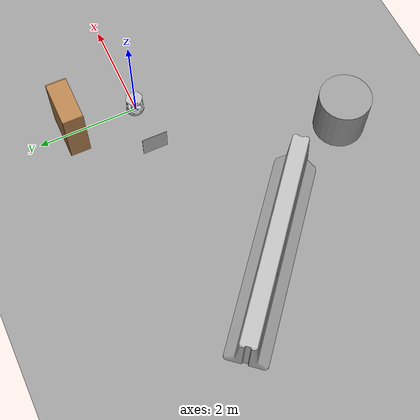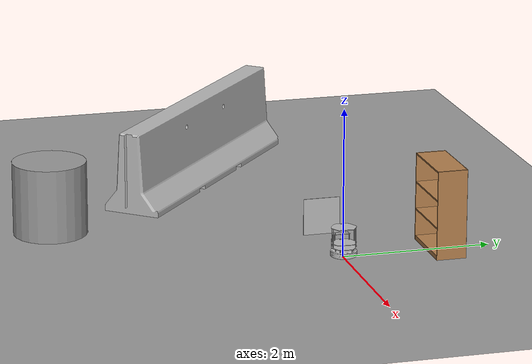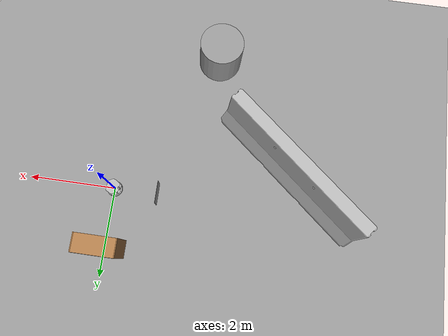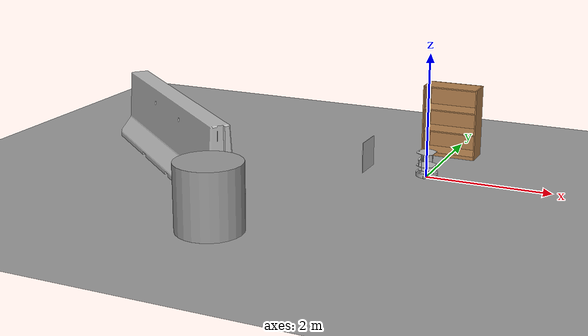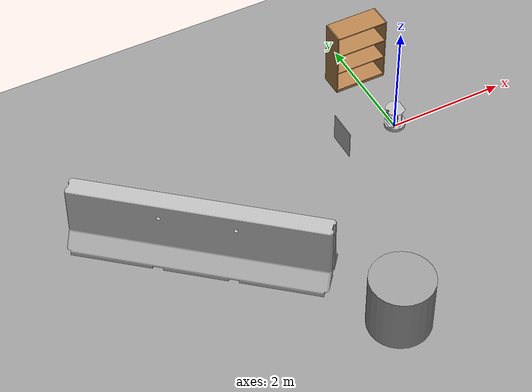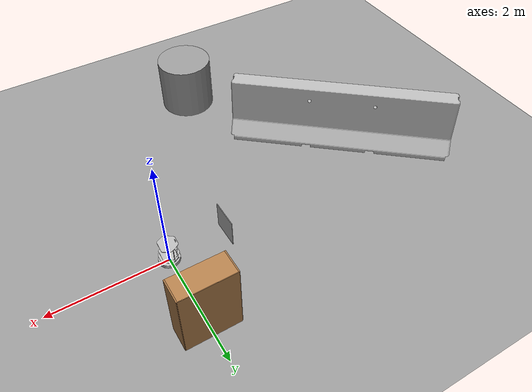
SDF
<sdf version="1.4">
 <world name="default">
  <light name="sun" type="directional">
   <pose>0 0 10 0 -0 0</pose>
   <diffuse>0.8 0.8 0.8 1</diffuse>
   <specular>0.2 0.2 0.2 1</specular>
   <attenuation>
    <range>1000</range>
    <constant>0.9</constant>
    <linear>0.01</linear>
    <quadratic>0.001</quadratic>
   </attenuation>
   <direction>0.5 0.1 -0.9</direction>
  </light>
  <scene><ambient>0.4 0.4 0.4 1</ambient><background>0.7 0.7 0.7 1</background><shadows>1</shadows></scene>
  <physics type="ode">
   <max_step_size>0.01</max_step_size>
   <real_time_factor>1</real_time_factor>
   <real_time_update_rate>100</real_time_update_rate>
   <gravity>0 0 -9.8</gravity>
  </physics>
  <model name="bookshelf">
   <static>1</static>
   <link name="link">
    <inertial><mass>1</mass></inertial>
    <collision name="back">
     <pose>0 0.005 0.6 0 -0 0</pose>
     <geometry><box><size>0.9 0.01 1.2</size></box></geometry>
    </collision>
    <visual name="visual1">
     <pose>0 0.005 0.6 0 -0 0</pose>
     <geometry><box><size>0.9 0.01 1.2</size></box></geometry>
     <material>
      <script><uri>file://media/materials/scripts/gazebo.material</uri><name>Gazebo/Wood</name></script>
     </material>
    </visual>
    <collision name="left_side">
     <pose>0.45 -0.195 0.6 0 -0 0</pose>
     <geometry><box><size>0.02 0.4 1.2</size></box></geometry>
    </collision>
    <visual name="visual2">
     <pose>0.45 -0.195 0.6 0 -0 0</pose>
     <geometry><box><size>0.02 0.4 1.2</size></box></geometry>
     <material>
      <script><uri>file://media/materials/scripts/gazebo.material</uri><name>Gazebo/Wood</name></script>
     </material>
    </visual>
    <collision name="right_side">
     <pose>-0.45 -0.195 0.6 0 -0 0</pose>
     <geometry><box><size>0.02 0.4 1.2</size></box></geometry>
    </collision>
    <visual name="visual3">
     <pose>-0.45 -0.195 0.6 0 -0 0</pose>
     <geometry><box><size>0.02 0.4 1.2</size></box></geometry>
     <material>
      <script><uri>file://media/materials/scripts/gazebo.material</uri><name>Gazebo/Wood</name></script>
     </material>
    </visual>
    <collision name="bottom">
     <pose>0 -0.195 0.03 0 -0 0</pose>
     <geometry><box><size>0.88 0.4 0.06</size></box></geometry>
    </collision>
    <visual name="visual4">
     <pose>0 -0.195 0.03 0 -0 0</pose>
     <geometry><box><size>0.88 0.4 0.06</size></box></geometry>
     <material>
      <script><uri>file://media/materials/scripts/gazebo.material</uri><name>Gazebo/Wood</name></script>
     </material>
    </visual>
    <collision name="top">
     <pose>0 -0.195 1.19 0 -0 0</pose>
     <geometry><box><size>0.88 0.4 0.02</size></box></geometry>
    </collision>
    <visual name="visual5">
     <pose>0 -0.195 1.19 0 -0 0</pose>
     <geometry><box><size>0.88 0.4 0.02</size></box></geometry>
     <material>
      <script><uri>file://media/materials/scripts/gazebo.material</uri><name>Gazebo/Wood</name></script>
     </material>
    </visual>
    <collision name="low_shelf">
     <pose>0 -0.195 0.43 0 -0 0</pose>
     <geometry><box><size>0.88 0.4 0.02</size></box></geometry>
    </collision>
    <visual name="visual6">
     <pose>0 -0.195 0.43 0 -0 0</pose>
     <geometry><box><size>0.88 0.4 0.02</size></box></geometry>
     <material>
      <script><uri>file://media/materials/scripts/gazebo.material</uri><name>Gazebo/Wood</name></script>
     </material>
    </visual>
    <collision name="high_shelf">
     <pose>0 -0.195 0.8 0 -0 0</pose>
     <geometry><box><size>0.88 0.4 0.02</size></box></geometry>
    </collision>
    <visual name="visual7">
     <pose>0 -0.195 0.8 0 -0 0</pose>
     <geometry><box><size>0.88 0.4 0.02</size></box></geometry>
     <material>
      <script><uri>file://media/materials/scripts/gazebo.material</uri><name>Gazebo/Wood</name></script>
     </material>
    </visual>
    <velocity_decay><linear>0</linear><angular>0</angular></velocity_decay>
   </link>
   <pose>0 1.53026 0 0 -0 0</pose>
  </model>
  <model name="jersey_barrier">
   <static>1</static>
   <link name="link">
    <visual name="visual">
     <geometry><mesh><uri>model://jersey_barrier/meshes/jersey_barrier.dae</uri></mesh></geometry>
    </visual>
    <collision name="upright">
     <pose>0 0 0.5715 0 -0 0</pose>
     <geometry><box><size>4.06542 0.3063 1.143</size></box></geometry>
    </collision>
    <collision name="base">
     <pose>0 0 0.032258 0 -0 0</pose>
     <geometry><box><size>4.06542 0.8107 0.064516</size></box></geometry>
    </collision>
    <collision name="base2">
     <pose>0 0 0.1 0 -0 0</pose>
     <geometry><box><size>4.06542 0.65 0.1</size></box></geometry>
    </collision>
    <collision name="base3">
     <pose>0 0 0.2 0 -0 0</pose>
     <geometry><box><size>4.06542 0.5 0.1</size></box></geometry>
    </collision>
    <collision name="left-angle">
     <pose>0 -0.224 0.2401 0.9 -0 0</pose>
     <geometry><box><size>4.06542 0.5 0.064516</size></box></geometry>
    </collision>
    <collision name="right-angle">
     <pose>0 0.224 0.2401 -0.9 0 0</pose>
     <geometry><box><size>4.06542 0.5 0.064516</size></box></geometry>
    </collision>
    <velocity_decay><linear>0</linear><angular>0</angular></velocity_decay>
   </link>
   <pose>-4 -1 0 0 0 -0.7</pose>
  </model>
  <model name="ground_plane_0">
   <static>1</static>
   <link name="link">
    <collision name="collision">
     <geometry><plane><normal>0 0 1</normal><size>100 100</size></plane></geometry>
     <surface><friction><ode><mu>100</mu><mu2>50</mu2></ode></friction></surface>
    </collision>
    <visual name="visual">
     <cast_shadows>0</cast_shadows>
     <geometry><plane><normal>0 0 1</normal><size>100 100</size></plane></geometry>
     <material>
      <script><uri>file://media/materials/scripts/gazebo.material</uri><name>Gazebo/Grey</name></script>
     </material>
    </visual>
    <velocity_decay><linear>0</linear><angular>0</angular></velocity_decay>
   </link>
   <pose>0.497681 0 0 0 -0 0</pose>
  </model>
  <model name="unit_cylinder_1">
   <pose>-2 -3.4888 0.49912 -0 -0 -0</pose>
   <link name="link">
    <inertial>
     <mass>1</mass>
     <inertia><ixx>1</ixx><ixy>0</ixy><ixz>0</ixz><iyy>1</iyy><iyz>0</iyz><izz>1</izz></inertia>
    </inertial>
    <collision name="collision">
     <geometry><cylinder><radius>0.5</radius><length>1</length></cylinder></geometry>
    </collision>
    <visual name="visual">
     <geometry><cylinder><radius>0.5</radius><length>1</length></cylinder></geometry>
     <material>
      <script><uri>file://media/materials/scripts/gazebo.material</uri><name>Gazebo/Grey</name></script>
     </material>
    </visual>
    <velocity_decay><linear>0</linear><angular>0</angular></velocity_decay>
   </link>
   <static>0</static>
  </model>
  <spherical_coordinates>
   <surface_model>EARTH_WGS84</surface_model>
   <latitude_deg>0</latitude_deg>
   <longitude_deg>0</longitude_deg>
   <elevation>0</elevation>
   <heading_deg>0</heading_deg>
  </spherical_coordinates>
  <model name="mobile_base">
   <link name="base_footprint">
    <inertial>
     <pose>-0.00263512 -4.10874e-05 0.129243 0 -0 0</pose>
     <mass>4.6973</mass>
     <inertia>
      <ixx>0.1365</ixx>
      <ixy>-2.51802e-05</ixy>
      <ixz>0.0108194</ixz>
      <iyy>0.132157</iyy>
      <iyz>4.89572e-05</iyz>
      <izz>0.0741648</izz>
     </inertia>
    </inertial>
    <collision name="base_footprint_collision_base_link">
     <pose>0 0 0.06969 0 -0 0</pose>
     <geometry><cylinder><length>0.10938</length><radius>0.178</radius></cylinder></geometry>
     <surface><friction><ode><mu>0.3</mu><mu2>0.3</mu2></ode></friction></surface>
    </collision>
    <collision name="base_footprint_collision_camera_link">
     <pose>-0.087 -0.0015 0.2972 0 -0 0</pose>
     <geometry><box><size>0.073 0.276 0.072</size></box></geometry>
    </collision>
    <collision name="base_footprint_collision_caster_back_link">
     <pose>-0.135 0 0.0192 -1.5708 0 0</pose>
     <geometry><cylinder><length>0.0176</length><radius>0.017</radius></cylinder></geometry>
     <surface>
      <contact><ode><kp>1e+06</kp><kd>100</kd><max_vel>1</max_vel><min_depth>0.001</min_depth></ode></contact>
      <friction><ode><mu>0</mu><mu2>0</mu2></ode></friction>
     </surface>
    </collision>
    <collision name="base_footprint_collision_caster_front_link">
     <pose>0.115 0 0.0172 -1.5708 0 0</pose>
     <geometry><cylinder><length>0.0176</length><radius>0.017</radius></cylinder></geometry>
     <surface>
      <contact><ode><kp>1e+06</kp><kd>100</kd><max_vel>1</max_vel><min_depth>0.001</min_depth></ode></contact>
      <friction><ode><mu>0</mu><mu2>0</mu2></ode></friction>
     </surface>
    </collision>
    <collision name="base_footprint_collision_mount_asus_xtion_pro_link">
     <pose>-0.1024 0 0.2822 0 -0 0</pose>
     <geometry><box><size>0.033 0.276 0.012</size></box></geometry>
    </collision>
    <collision name="base_footprint_collision_plate_bottom_link">
     <pose>0 0 0.1408 0 -0 0</pose>
     <geometry><cylinder><length>0.006</length><radius>0.17</radius></cylinder></geometry>
    </collision>
    <collision name="base_footprint_collision_plate_middle_link">
     <pose>0 0 0.1976 0 -0 0</pose>
     <geometry><cylinder><length>0.006</length><radius>0.17</radius></cylinder></geometry>
    </collision>
    <collision name="base_footprint_collision_plate_top_link">
     <pose>0 0 0.4068 0 -0 0</pose>
     <geometry><cylinder><length>0.006</length><radius>0.17</radius></cylinder></geometry>
    </collision>
    <collision name="base_footprint_collision_pole_bottom_0_link">
     <pose>0.12 0.082 0.113 0 -0 0</pose>
     <geometry><cylinder><length>0.0492</length><radius>0.006</radius></cylinder></geometry>
    </collision>
    <collision name="base_footprint_collision_pole_bottom_1_link">
     <pose>0.055 0.12 0.113 0 -0 0</pose>
     <geometry><cylinder><length>0.0492</length><radius>0.006</radius></cylinder></geometry>
    </collision>
    <collision name="base_footprint_collision_pole_bottom_2_link">
     <pose>-0.055 0.12 0.113 0 -0 0</pose>
     <geometry><cylinder><length>0.0492</length><radius>0.006</radius></cylinder></geometry>
    </collision>
    <collision name="base_footprint_collision_pole_bottom_3_link">
     <pose>0.12 -0.082 0.113 0 -0 0</pose>
     <geometry><cylinder><length>0.0492</length><radius>0.006</radius></cylinder></geometry>
    </collision>
    <collision name="base_footprint_collision_pole_bottom_4_link">
     <pose>0.055 -0.12 0.113 0 -0 0</pose>
     <geometry><cylinder><length>0.0492</length><radius>0.006</radius></cylinder></geometry>
    </collision>
    <collision name="base_footprint_collision_pole_bottom_5_link">
     <pose>-0.055 -0.12 0.113 0 -0 0</pose>
     <geometry><cylinder><length>0.0492</length><radius>0.006</radius></cylinder></geometry>
    </collision>
    <collision name="base_footprint_collision_pole_kinect_0_link">
     <pose>-0.1024 0.098 0.2474 0 -0 0</pose>
     <geometry><cylinder><length>0.0936</length><radius>0.006</radius></cylinder></geometry>
    </collision>
    <collision name="base_footprint_collision_pole_kinect_1_link">
     <pose>-0.1024 -0.098 0.2474 0 -0 0</pose>
     <geometry><cylinder><length>0.0936</length><radius>0.006</radius></cylinder></geometry>
    </collision>
    <collision name="base_footprint_collision_pole_middle_0_link">
     <pose>0.0381 0.1505 0.1742 0 -0 0</pose>
     <geometry><cylinder><length>0.0608</length><radius>0.006</radius></cylinder></geometry>
    </collision>
    <collision name="base_footprint_collision_pole_middle_1_link">
     <pose>0.0381 -0.1505 0.1742 0 -0 0</pose>
     <geometry><cylinder><length>0.0608</length><radius>0.006</radius></cylinder></geometry>
    </collision>
    <collision name="base_footprint_collision_pole_middle_2_link">
     <pose>-0.0381 0.1505 0.1742 0 -0 0</pose>
     <geometry><cylinder><length>0.0608</length><radius>0.006</radius></cylinder></geometry>
    </collision>
    <collision name="base_footprint_collision_pole_middle_3_link">
     <pose>-0.0381 -0.1505 0.1742 0 -0 0</pose>
     <geometry><cylinder><length>0.0608</length><radius>0.006</radius></cylinder></geometry>
    </collision>
    <collision name="base_footprint_collision_pole_top_0_link">
     <pose>0.0381 0.1505 0.3022 0 -0 0</pose>
     <geometry><cylinder><length>0.2032</length><radius>0.006</radius></cylinder></geometry>
    </collision>
    <collision name="base_footprint_collision_pole_top_1_link">
     <pose>0.0381 -0.1505 0.3022 0 -0 0</pose>
     <geometry><cylinder><length>0.2032</length><radius>0.006</radius></cylinder></geometry>
    </collision>
    <collision name="base_footprint_collision_pole_top_2_link">
     <pose>-0.0381 0.1505 0.3022 0 -0 0</pose>
     <geometry><cylinder><length>0.2032</length><radius>0.006</radius></cylinder></geometry>
    </collision>
    <collision name="base_footprint_collision_pole_top_3_link">
     <pose>-0.0381 -0.1505 0.3022 0 -0 0</pose>
     <geometry><cylinder><length>0.2032</length><radius>0.006</radius></cylinder></geometry>
    </collision>
    <visual name="base_footprint_visual_base_link">
     <pose>0.001 0 0.06219 0 -0 0</pose>
     <geometry>
      <mesh><scale>1 1 1</scale><uri>/opt/ros/indigo/share/kobuki_description/meshes/main_body.dae</uri></mesh>
     </geometry>
    </visual>
    <visual name="base_footprint_visual_camera_link">
     <pose>-0.102 0.002 0.3012 0 -0 0</pose>
     <geometry>
      <mesh>
       <scale>1 1 1</scale>
       <uri>/opt/ros/indigo/share/turtlebot_description/meshes/sensors/xtion_pro_camera.dae</uri>
      </mesh>
     </geometry>
    </visual>
    <visual name="base_footprint_visual_mount_asus_xtion_pro_link">
     <pose>-0.1024 0 0.2822 -1.5708 0 0</pose>
     <geometry>
      <mesh>
       <scale>1 1 1</scale>
       <uri>/opt/ros/indigo/share/turtlebot_description/meshes/sensors/xtion_pro_stack.dae</uri>
      </mesh>
     </geometry>
    </visual>
    <visual name="base_footprint_visual_plate_bottom_link">
     <pose>0.02364 0 0.1408 0 -0 0</pose>
     <geometry>
      <mesh>
       <scale>1 1 1</scale>
       <uri>/opt/ros/indigo/share/turtlebot_description/meshes/stacks/hexagons/plate_bottom.dae</uri>
      </mesh>
     </geometry>
    </visual>
    <visual name="base_footprint_visual_plate_middle_link">
     <pose>-0.01364 0 0.1976 0 -0 0</pose>
     <geometry>
      <mesh>
       <scale>1 1 1</scale>
       <uri>/opt/ros/indigo/share/turtlebot_description/meshes/stacks/hexagons/plate_middle.dae</uri>
      </mesh>
     </geometry>
    </visual>
    <visual name="base_footprint_visual_plate_top_link">
     <pose>-0.01364 0 0.4068 0 -0 0</pose>
     <geometry>
      <mesh>
       <scale>1 1 1</scale>
       <uri>/opt/ros/indigo/share/turtlebot_description/meshes/stacks/hexagons/plate_top.dae</uri>
      </mesh>
     </geometry>
    </visual>
    <visual name="base_footprint_visual_pole_bottom_0_link">
     <pose>0.12 0.082 0.113 0 -0 0</pose>
     <geometry>
      <mesh>
       <scale>1 1 1</scale>
       <uri>/opt/ros/indigo/share/turtlebot_description/meshes/stacks/hexagons/pole_bottom.dae</uri>
      </mesh>
     </geometry>
    </visual>
    <visual name="base_footprint_visual_pole_bottom_1_link">
     <pose>0.055 0.12 0.113 0 -0 0</pose>
     <geometry>
      <mesh>
       <scale>1 1 1</scale>
       <uri>/opt/ros/indigo/share/turtlebot_description/meshes/stacks/hexagons/pole_bottom.dae</uri>
      </mesh>
     </geometry>
    </visual>
    <visual name="base_footprint_visual_pole_bottom_2_link">
     <pose>-0.055 0.12 0.113 0 -0 0</pose>
     <geometry>
      <mesh>
       <scale>1 1 1</scale>
       <uri>/opt/ros/indigo/share/turtlebot_description/meshes/stacks/hexagons/pole_bottom.dae</uri>
      </mesh>
     </geometry>
    </visual>
    <visual name="base_footprint_visual_pole_bottom_3_link">
     <pose>0.12 -0.082 0.113 0 -0 0</pose>
     <geometry>
      <mesh>
       <scale>1 1 1</scale>
       <uri>/opt/ros/indigo/share/turtlebot_description/meshes/stacks/hexagons/pole_bottom.dae</uri>
      </mesh>
     </geometry>
    </visual>
    <visual name="base_footprint_visual_pole_bottom_4_link">
     <pose>0.055 -0.12 0.113 0 -0 0</pose>
     <geometry>
      <mesh>
       <scale>1 1 1</scale>
       <uri>/opt/ros/indigo/share/turtlebot_description/meshes/stacks/hexagons/pole_bottom.dae</uri>
      </mesh>
     </geometry>
    </visual>
    <visual name="base_footprint_visual_pole_bottom_5_link">
     <pose>-0.055 -0.12 0.113 0 -0 0</pose>
     <geometry>
      <mesh>
       <scale>1 1 1</scale>
       <uri>/opt/ros/indigo/share/turtlebot_description/meshes/stacks/hexagons/pole_bottom.dae</uri>
      </mesh>
     </geometry>
    </visual>
    <visual name="base_footprint_visual_pole_kinect_0_link">
     <pose>-0.1024 0.098 0.2374 0 -0 0</pose>
     <geometry>
      <mesh>
       <scale>1 1 1</scale>
       <uri>/opt/ros/indigo/share/turtlebot_description/meshes/sensors/sensor_pole.dae</uri>
      </mesh>
     </geometry>
    </visual>
    <visual name="base_footprint_visual_pole_kinect_1_link">
     <pose>-0.1024 -0.098 0.2374 0 -0 0</pose>
     <geometry>
      <mesh>
       <scale>1 1 1</scale>
       <uri>/opt/ros/indigo/share/turtlebot_description/meshes/sensors/sensor_pole.dae</uri>
      </mesh>
     </geometry>
    </visual>
    <visual name="base_footprint_visual_pole_middle_0_link">
     <pose>0.0381 0.1505 0.1742 3.14159 -2.06823e-13 3.14159</pose>
     <geometry>
      <mesh>
       <scale>1 1 1</scale>
       <uri>/opt/ros/indigo/share/turtlebot_description/meshes/stacks/hexagons/pole_middle.dae</uri>
      </mesh>
     </geometry>
    </visual>
    <visual name="base_footprint_visual_pole_middle_1_link">
     <pose>0.0381 -0.1505 0.1742 3.14159 -2.06823e-13 3.14159</pose>
     <geometry>
      <mesh>
       <scale>1 1 1</scale>
       <uri>/opt/ros/indigo/share/turtlebot_description/meshes/stacks/hexagons/pole_middle.dae</uri>
      </mesh>
     </geometry>
    </visual>
    <visual name="base_footprint_visual_pole_middle_2_link">
     <pose>-0.0381 0.1505 0.1742 3.14159 -2.06823e-13 3.14159</pose>
     <geometry>
      <mesh>
       <scale>1 1 1</scale>
       <uri>/opt/ros/indigo/share/turtlebot_description/meshes/stacks/hexagons/pole_middle.dae</uri>
      </mesh>
     </geometry>
    </visual>
    <visual name="base_footprint_visual_pole_middle_3_link">
     <pose>-0.0381 -0.1505 0.1742 3.14159 -2.06823e-13 3.14159</pose>
     <geometry>
      <mesh>
       <scale>1 1 1</scale>
       <uri>/opt/ros/indigo/share/turtlebot_description/meshes/stacks/hexagons/pole_middle.dae</uri>
      </mesh>
     </geometry>
    </visual>
    <visual name="base_footprint_visual_pole_top_0_link">
     <pose>0.0381 0.1505 0.3022 0 -0 0</pose>
     <geometry>
      <mesh>
       <scale>1 1 1</scale>
       <uri>/opt/ros/indigo/share/turtlebot_description/meshes/stacks/hexagons/pole_top.dae</uri>
      </mesh>
     </geometry>
    </visual>
    <visual name="base_footprint_visual_pole_top_1_link">
     <pose>0.0381 -0.1505 0.3022 0 -0 0</pose>
     <geometry>
      <mesh>
       <scale>1 1 1</scale>
       <uri>/opt/ros/indigo/share/turtlebot_description/meshes/stacks/hexagons/pole_top.dae</uri>
      </mesh>
     </geometry>
    </visual>
    <visual name="base_footprint_visual_pole_top_2_link">
     <pose>-0.0381 0.1505 0.3022 0 -0 0</pose>
     <geometry>
      <mesh>
       <scale>1 1 1</scale>
       <uri>/opt/ros/indigo/share/turtlebot_description/meshes/stacks/hexagons/pole_top.dae</uri>
      </mesh>
     </geometry>
    </visual>
    <visual name="base_footprint_visual_pole_top_3_link">
     <pose>-0.0381 -0.1505 0.3022 0 -0 0</pose>
     <geometry>
      <mesh>
       <scale>1 1 1</scale>
       <uri>/opt/ros/indigo/share/turtlebot_description/meshes/stacks/hexagons/pole_top.dae</uri>
      </mesh>
     </geometry>
    </visual>
    <velocity_decay><linear>0</linear><angular>0</angular></velocity_decay>
    <sensor name="bumpers" type="contact">
     <always_on>1</always_on>
     <update_rate>50</update_rate>
     <visualize>1</visualize>
     <contact><collision>base_footprint_collision_base_link</collision><topic>__default_topic__</topic></contact>
     <pose>0 0 0.0102 0 -0 0</pose>
    </sensor>
    <velocity_decay><linear>0</linear><angular>0</angular></velocity_decay>
    <sensor name="camera" type="depth">
     <always_on>1</always_on>
     <update_rate>20</update_rate>
     <camera name="__default__">
      <horizontal_fov>1.0472</horizontal_fov>
      <image><format>B8G8R8</format><width>640</width><height>480</height></image>
      <clip><near>0.05</near><far>8</far></clip>
     </camera>
     <plugin name="kinect_camera_controller" filename="libgazebo_ros_openni_kinect.so">
      <cameraName>camera</cameraName>
      <alwaysOn>true</alwaysOn>
      <updateRate>10</updateRate>
      <imageTopicName>rgb/image_raw</imageTopicName>
      <depthImageTopicName>depth/image_raw</depthImageTopicName>
      <pointCloudTopicName>depth/points</pointCloudTopicName>
      <cameraInfoTopicName>rgb/camera_info</cameraInfoTopicName>
      <depthImageCameraInfoTopicName>depth/camera_info</depthImageCameraInfoTopicName>
      <frameName>camera_depth_optical_frame</frameName>
      <baseline>0.1</baseline>
      <distortion_k1>0.0</distortion_k1>
      <distortion_k2>0.0</distortion_k2>
      <distortion_k3>0.0</distortion_k3>
      <distortion_t1>0.0</distortion_t1>
      <distortion_t2>0.0</distortion_t2>
      <pointCloudCutoff>0.4</pointCloudCutoff>
      <robotNamespace>/</robotNamespace>
     </plugin>
     <pose>-0.087 -0.0015 0.2972 0 -0 0</pose>
    </sensor>
    <velocity_decay><linear>0</linear><angular>0</angular></velocity_decay>
    <velocity_decay><linear>0</linear><angular>0</angular></velocity_decay>
    <velocity_decay><linear>0</linear><angular>0</angular></velocity_decay>
    <sensor name="cliff_sensor_front" type="ray">
     <always_on>1</always_on>
     <update_rate>50</update_rate>
     <visualize>1</visualize>
     <ray>
      <scan>
       <horizontal>
        <samples>50</samples>
        <resolution>1</resolution>
        <min_angle>-0.0436</min_angle>
        <max_angle>0.0436</max_angle>
       </horizontal>
      </scan>
      <range><min>0.01</min><max>0.15</max><resolution>1</resolution></range>
     </ray>
     <pose>0.156 0 0.0316 3.14159 1.57079 3.14159</pose>
    </sensor>
    <velocity_decay><linear>0</linear><angular>0</angular></velocity_decay>
    <sensor name="cliff_sensor_left" type="ray">
     <always_on>1</always_on>
     <update_rate>50</update_rate>
     <visualize>1</visualize>
     <ray>
      <scan>
       <horizontal>
        <samples>50</samples>
        <resolution>1</resolution>
        <min_angle>-0.0436</min_angle>
        <max_angle>0.0436</max_angle>
       </horizontal>
      </scan>
      <range><min>0.01</min><max>0.15</max><resolution>1</resolution></range>
     </ray>
     <pose>0.08734 0.13601 0.0316 3.14159 1.57079 3.14159</pose>
    </sensor>
    <velocity_decay><linear>0</linear><angular>0</angular></velocity_decay>
    <sensor name="cliff_sensor_right" type="ray">
     <always_on>1</always_on>
     <update_rate>50</update_rate>
     <visualize>1</visualize>
     <ray>
      <scan>
       <horizontal>
        <samples>50</samples>
        <resolution>1</resolution>
        <min_angle>-0.0436</min_angle>
        <max_angle>0.0436</max_angle>
       </horizontal>
      </scan>
      <range><min>0.01</min><max>0.15</max><resolution>1</resolution></range>
     </ray>
     <pose>0.085 -0.13601 0.0316 3.14159 1.57079 3.14159</pose>
    </sensor>
    <velocity_decay><linear>0</linear><angular>0</angular></velocity_decay>
    <sensor name="imu" type="imu">
     <always_on>1</always_on>
     <update_rate>50</update_rate>
     <visualize>0</visualize>
     <imu>
      <noise>
       <type>gaussian</type>
       <rate><mean>0</mean><stddev>1.96e-06</stddev><bias_mean>0</bias_mean><bias_stddev>0</bias_stddev></rate>
       <accel><mean>0</mean><stddev>0.017</stddev><bias_mean>0.1</bias_mean><bias_stddev>0.001</bias_stddev></accel>
      </noise>
     </imu>
     <pose>0.056 0.062 0.0304 0 -0 0</pose>
    </sensor>
   </link>
   <link name="wheel_left_link">
    <pose>0 0.115 0.0352 -1.5708 0 0</pose>
    <inertial>
     <mass>0.01</mass>
     <inertia><ixx>0.001</ixx><ixy>0</ixy><ixz>0</ixz><iyy>0.001</iyy><iyz>0</iyz><izz>0.001</izz></inertia>
    </inertial>
    <collision name="wheel_left_link_collision">
     <geometry><cylinder><length>0.0206</length><radius>0.0352</radius></cylinder></geometry>
     <surface>
      <contact><ode><kp>1e+06</kp><kd>100</kd><max_vel>1</max_vel><min_depth>0.001</min_depth></ode></contact>
      <friction><ode><mu>1</mu><mu2>1</mu2></ode></friction>
     </surface>
    </collision>
    <visual name="wheel_left_link_visual">
     <geometry>
      <mesh><scale>1 1 1</scale><uri>/opt/ros/indigo/share/kobuki_description/meshes/wheel.dae</uri></mesh>
     </geometry>
    </visual>
    <velocity_decay><linear>0</linear><angular>0</angular></velocity_decay>
   </link>
   <joint name="wheel_left_joint" type="revolute">
    <child>wheel_left_link</child>
    <parent>base_footprint</parent>
    <axis><xyz>0 1 0</xyz><limit><lower>-1e+16</lower><upper>1e+16</upper></limit></axis>
   </joint>
   <link name="wheel_right_link">
    <pose>0 -0.115 0.0352 -1.5708 0 0</pose>
    <inertial>
     <mass>0.01</mass>
     <inertia><ixx>0.001</ixx><ixy>0</ixy><ixz>0</ixz><iyy>0.001</iyy><iyz>0</iyz><izz>0.001</izz></inertia>
    </inertial>
    <collision name="wheel_right_link_collision">
     <geometry><cylinder><length>0.0206</length><radius>0.035</radius></cylinder></geometry>
     <surface>
      <contact><ode><kp>1e+06</kp><kd>100</kd><max_vel>1</max_vel><min_depth>0.001</min_depth></ode></contact>
      <friction><ode><mu>1</mu><mu2>1</mu2></ode></friction>
     </surface>
    </collision>
    <visual name="wheel_right_link_visual">
     <geometry>
      <mesh><scale>1 1 1</scale><uri>/opt/ros/indigo/share/kobuki_description/meshes/wheel.dae</uri></mesh>
     </geometry>
    </visual>
    <velocity_decay><linear>0</linear><angular>0</angular></velocity_decay>
   </link>
   <joint name="wheel_right_joint" type="revolute">
    <child>wheel_right_link</child>
    <parent>base_footprint</parent>
    <axis><xyz>0 1 0</xyz><limit><lower>-1e+16</lower><upper>1e+16</upper></limit></axis>
   </joint>
   <static>0</static>
   <plugin name="kobuki_controller" filename="libgazebo_ros_kobuki.so">
    <publish_tf>1</publish_tf>
    <left_wheel_joint_name>wheel_left_joint</left_wheel_joint_name>
    <right_wheel_joint_name>wheel_right_joint</right_wheel_joint_name>
    <wheel_separation>.230</wheel_separation>
    <wheel_diameter>0.070</wheel_diameter>
    <torque>1.0</torque>
    <velocity_command_timeout>0.6</velocity_command_timeout>
    <cliff_sensor_left_name>cliff_sensor_left</cliff_sensor_left_name>
    <cliff_sensor_center_name>cliff_sensor_front</cliff_sensor_center_name>
    <cliff_sensor_right_name>cliff_sensor_right</cliff_sensor_right_name>
    <cliff_detection_threshold>0.04</cliff_detection_threshold>
    <bumper_name>bumpers</bumper_name>
    <imu_name>imu</imu_name>
    <robotNamespace>/</robotNamespace>
   </plugin>
   <pose>0.001542 0.008888 -0.001131 4.8e-05 -0.007997 -0.03722</pose>
  </model>
  <model name="Marker0">
   <static>1</static>
   <link name="link">
    <visual name="visual"><geometry><mesh><uri>model://marker0/meshes/Marker0.dae</uri></mesh></geometry></visual>
    <velocity_decay><linear>0</linear><angular>0</angular></velocity_decay>
   </link>
   <pose>-1 0 0 0 -0 0</pose>
  </model>
 </world>
</sdf>
